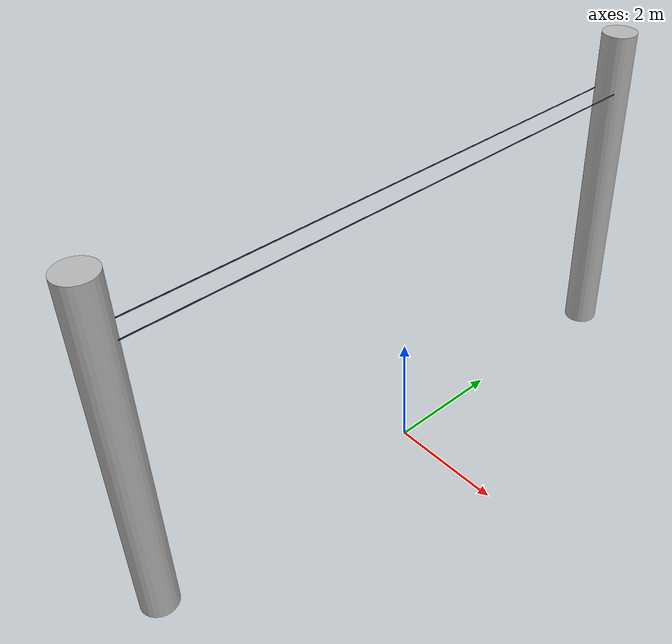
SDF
<?xml version='1.0'?>
<sdf version='1.7'>
  <model name='telegraph_pole'>
    <link name='pole_00'>
      <pose>0 -5 3 0 -0 0</pose>
      <self_collide>0</self_collide>
      <inertial>
        <pose>0 0 0 0 -0 0</pose>
        <inertia>
          <ixx>1</ixx>
          <ixy>0</ixy>
          <ixz>0</ixz>
          <iyy>1</iyy>
          <iyz>0</iyz>
          <izz>1</izz>
        </inertia>
        <mass>1</mass>
      </inertial>
      <enable_wind>0</enable_wind>
      <kinematic>0</kinematic>
      <gravity>1</gravity>
      <visual name='visual'>
        <geometry>
          <cylinder>
            <radius>0.3</radius>
            <length>6</length>
          </cylinder>
        </geometry>
        <material>
          <script>Gazebo/Grey</script>
        </material>
        <pose>0 0 0 0 -0 0</pose>
        <transparency>0</transparency>
        <cast_shadows>1</cast_shadows>
      </visual>
      <collision name='collision'>
        <laser_retro>0</laser_retro>
        <max_contacts>10</max_contacts>
        <pose>0 0 0 0 -0 0</pose>
        <geometry>
          <cylinder>
            <radius>0.3</radius>
            <length>6</length>
          </cylinder>
        </geometry>
        <surface>
          <friction>
            <ode>
              <mu>1</mu>
              <mu2>1</mu2>
              <fdir1>0 0 0</fdir1>
              <slip1>0</slip1>
              <slip2>0</slip2>
            </ode>
            <torsional>
              <coefficient>1</coefficient>
              <patch_radius>0</patch_radius>
              <surface_radius>0</surface_radius>
              <use_patch_radius>1</use_patch_radius>
              <ode>
                <slip>0</slip>
              </ode>
            </torsional>
          </friction>
          <bounce>
            <restitution_coefficient>0</restitution_coefficient>
            <threshold>1e+06</threshold>
          </bounce>
          <contact>
            <collide_without_contact>0</collide_without_contact>
            <collide_without_contact_bitmask>1</collide_without_contact_bitmask>
            <collide_bitmask>1</collide_bitmask>
            <ode>
              <soft_cfm>0</soft_cfm>
              <soft_erp>0.2</soft_erp>
              <kp>1e+13</kp>
              <kd>1</kd>
              <max_vel>0.01</max_vel>
              <min_depth>0</min_depth>
            </ode>
            <bullet>
              <split_impulse>1</split_impulse>
              <split_impulse_penetration_threshold>-0.01</split_impulse_penetration_threshold>
              <soft_cfm>0</soft_cfm>
              <soft_erp>0.2</soft_erp>
              <kp>1e+13</kp>
              <kd>1</kd>
            </bullet>
          </contact>
        </surface>
      </collision>
    </link>
    <link name='line00_00_01'>
      <pose>-0.2 0 5 1.57 -0 0</pose>
      <self_collide>0</self_collide>
      <inertial>
        <pose>0 0 0 0 -0 0</pose>
        <inertia>
          <ixx>1</ixx>
          <ixy>0</ixy>
          <ixz>0</ixz>
          <iyy>1</iyy>
          <iyz>0</iyz>
          <izz>1</izz>
        </inertia>
        <mass>1</mass>
      </inertial>
      <enable_wind>0</enable_wind>
      <kinematic>0</kinematic>
      <visual name='visual'>
        <geometry>
          <cylinder>
            <radius>0.01</radius>
            <length>10</length>
          </cylinder>
        </geometry>
        <material>
          <ambient>0.1 0.1 0.1 1</ambient>
          <diffuse>0.1 0.1 0.2 1</diffuse>
          <specular>0 0 0 0</specular>
          <emissive>0 0 0 1</emissive>
          <shader type='pixel'/>
          <script>
            <name>ModelPreview_5::line00_00_01::visual_MATERIAL_</name>
            <uri>__default__</uri>
          </script>
        </material>
        <pose>0 0 0 0 -0 0</pose>
        <transparency>0</transparency>
        <cast_shadows>1</cast_shadows>
      </visual>
      <collision name='collision'>
        <laser_retro>0</laser_retro>
        <max_contacts>10</max_contacts>
        <pose>0 0 0 0 -0 0</pose>
        <geometry>
          <cylinder>
            <radius>0.01</radius>
            <length>10</length>
          </cylinder>
        </geometry>
        <surface>
          <friction>
            <ode>
              <mu>1</mu>
              <mu2>1</mu2>
              <fdir1>0 0 0</fdir1>
              <slip1>0</slip1>
              <slip2>0</slip2>
            </ode>
            <torsional>
              <coefficient>1</coefficient>
              <patch_radius>0</patch_radius>
              <surface_radius>0</surface_radius>
              <use_patch_radius>1</use_patch_radius>
              <ode>
                <slip>0</slip>
              </ode>
            </torsional>
          </friction>
          <bounce>
            <restitution_coefficient>0</restitution_coefficient>
            <threshold>1e+06</threshold>
          </bounce>
          <contact>
            <collide_without_contact>0</collide_without_contact>
            <collide_without_contact_bitmask>1</collide_without_contact_bitmask>
            <collide_bitmask>1</collide_bitmask>
            <ode>
              <soft_cfm>0</soft_cfm>
              <soft_erp>0.2</soft_erp>
              <kp>1e+13</kp>
              <kd>1</kd>
              <max_vel>0.01</max_vel>
              <min_depth>0</min_depth>
            </ode>
            <bullet>
              <split_impulse>1</split_impulse>
              <split_impulse_penetration_threshold>-0.01</split_impulse_penetration_threshold>
              <soft_cfm>0</soft_cfm>
              <soft_erp>0.2</soft_erp>
              <kp>1e+13</kp>
              <kd>1</kd>
            </bullet>
          </contact>
        </surface>
      </collision>
    </link>
    <link name='line01_00_01'>
      <pose>0.2 0 5 1.57 -0 0</pose>
      <self_collide>0</self_collide>
      <inertial>
        <pose>0 0 0 0 -0 0</pose>
        <inertia>
          <ixx>1</ixx>
          <ixy>0</ixy>
          <ixz>0</ixz>
          <iyy>1</iyy>
          <iyz>0</iyz>
          <izz>1</izz>
        </inertia>
        <mass>1</mass>
      </inertial>
      <enable_wind>0</enable_wind>
      <kinematic>0</kinematic>
      <visual name='visual'>
        <geometry>
          <cylinder>
            <radius>0.01</radius>
            <length>10</length>
          </cylinder>
        </geometry>
        <material>
          <ambient>0.1 0.1 0.1 1</ambient>
          <diffuse>0.1 0.1 0.2 1</diffuse>
          <specular>0 0 0 0</specular>
          <emissive>0 0 0 1</emissive>
          <shader type='pixel'/>
          <script>
            <name>ModelPreview_5::line01_00_01::visual_MATERIAL_</name>
            <uri>__default__</uri>
          </script>
        </material>
        <pose>0 0 0 0 -0 0</pose>
        <transparency>0</transparency>
        <cast_shadows>1</cast_shadows>
      </visual>
      <collision name='collision'>
        <laser_retro>0</laser_retro>
        <max_contacts>10</max_contacts>
        <pose>0 0 0 0 -0 0</pose>
        <geometry>
          <cylinder>
            <radius>0.01</radius>
            <length>10</length>
          </cylinder>
        </geometry>
        <surface>
          <friction>
            <ode>
              <mu>1</mu>
              <mu2>1</mu2>
              <fdir1>0 0 0</fdir1>
              <slip1>0</slip1>
              <slip2>0</slip2>
            </ode>
            <torsional>
              <coefficient>1</coefficient>
              <patch_radius>0</patch_radius>
              <surface_radius>0</surface_radius>
              <use_patch_radius>1</use_patch_radius>
              <ode>
                <slip>0</slip>
              </ode>
            </torsional>
          </friction>
          <bounce>
            <restitution_coefficient>0</restitution_coefficient>
            <threshold>1e+06</threshold>
          </bounce>
          <contact>
            <collide_without_contact>0</collide_without_contact>
            <collide_without_contact_bitmask>1</collide_without_contact_bitmask>
            <collide_bitmask>1</collide_bitmask>
            <ode>
              <soft_cfm>0</soft_cfm>
              <soft_erp>0.2</soft_erp>
              <kp>1e+13</kp>
              <kd>1</kd>
              <max_vel>0.01</max_vel>
              <min_depth>0</min_depth>
            </ode>
            <bullet>
              <split_impulse>1</split_impulse>
              <split_impulse_penetration_threshold>-0.01</split_impulse_penetration_threshold>
              <soft_cfm>0</soft_cfm>
              <soft_erp>0.2</soft_erp>
              <kp>1e+13</kp>
              <kd>1</kd>
            </bullet>
          </contact>
        </surface>
      </collision>
    </link>
    <link name='pole_01'>
      <pose>0 5 3 0 -0 0</pose>
      <self_collide>0</self_collide>
      <inertial>
        <pose>0 0 0 0 -0 0</pose>
        <inertia>
          <ixx>1</ixx>
          <ixy>0</ixy>
          <ixz>0</ixz>
          <iyy>1</iyy>
          <iyz>0</iyz>
          <izz>1</izz>
        </inertia>
        <mass>1</mass>
      </inertial>
      <enable_wind>0</enable_wind>
      <kinematic>0</kinematic>
      <gravity>1</gravity>
      <visual name='visual'>
        <geometry>
          <cylinder>
            <radius>0.3</radius>
            <length>6</length>
          </cylinder>
        </geometry>
        <material>
          <script>Gazebo/Grey</script>
        </material>
        <pose>0 0 0 0 -0 0</pose>
        <transparency>0</transparency>
        <cast_shadows>1</cast_shadows>
      </visual>
      <collision name='collision'>
        <laser_retro>0</laser_retro>
        <max_contacts>10</max_contacts>
        <pose>0 0 0 0 -0 0</pose>
        <geometry>
          <cylinder>
            <radius>0.3</radius>
            <length>6</length>
          </cylinder>
        </geometry>
        <surface>
          <friction>
            <ode>
              <mu>1</mu>
              <mu2>1</mu2>
              <fdir1>0 0 0</fdir1>
              <slip1>0</slip1>
              <slip2>0</slip2>
            </ode>
            <torsional>
              <coefficient>1</coefficient>
              <patch_radius>0</patch_radius>
              <surface_radius>0</surface_radius>
              <use_patch_radius>1</use_patch_radius>
              <ode>
                <slip>0</slip>
              </ode>
            </torsional>
          </friction>
          <bounce>
            <restitution_coefficient>0</restitution_coefficient>
            <threshold>1e+06</threshold>
          </bounce>
          <contact>
            <collide_without_contact>0</collide_without_contact>
            <collide_without_contact_bitmask>1</collide_without_contact_bitmask>
            <collide_bitmask>1</collide_bitmask>
            <ode>
              <soft_cfm>0</soft_cfm>
              <soft_erp>0.2</soft_erp>
              <kp>1e+13</kp>
              <kd>1</kd>
              <max_vel>0.01</max_vel>
              <min_depth>0</min_depth>
            </ode>
            <bullet>
              <split_impulse>1</split_impulse>
              <split_impulse_penetration_threshold>-0.01</split_impulse_penetration_threshold>
              <soft_cfm>0</soft_cfm>
              <soft_erp>0.2</soft_erp>
              <kp>1e+13</kp>
              <kd>1</kd>
            </bullet>
          </contact>
        </surface>
      </collision>
    </link>
    <joint name='line00_pole_00' type='fixed'>
      <parent>pole_00</parent>
      <child>line00_00_01</child>
      <pose>0 0 5 0 -0 0</pose>
      <physics>
        <ode>
          <limit>
            <cfm>0</cfm>
            <erp>0.2</erp>
          </limit>
          <suspension>
            <cfm>0</cfm>
            <erp>0.2</erp>
          </suspension>
        </ode>
      </physics>
    </joint>
    <joint name='line00_pole_01' type='fixed'>
      <parent>pole_01</parent>
      <child>line00_00_01</child>
      <pose>0 0 -5 0 -0 0</pose>
      <physics>
        <ode>
          <limit>
            <cfm>0</cfm>
            <erp>0.2</erp>
          </limit>
          <suspension>
            <cfm>0</cfm>
            <erp>0.2</erp>
          </suspension>
        </ode>
      </physics>
    </joint>
    <joint name='line01_pole_00' type='fixed'>
      <parent>pole_00</parent>
      <child>line01_00_01</child>
      <pose>0 0 5 0 -0 0</pose>
      <physics>
        <ode>
          <limit>
            <cfm>0</cfm>
            <erp>0.2</erp>
          </limit>
          <suspension>
            <cfm>0</cfm>
            <erp>0.2</erp>
          </suspension>
        </ode>
      </physics>
    </joint>
    <joint name='line01_pole_01' type='fixed'>
      <parent>pole_01</parent>
      <child>line01_00_01</child>
      <pose>0 0 -5 0 -0 0</pose>
      <physics>
        <ode>
          <limit>
            <cfm>0</cfm>
            <erp>0.2</erp>
          </limit>
          <suspension>
            <cfm>0</cfm>
            <erp>0.2</erp>
          </suspension>
        </ode>
      </physics>
    </joint>
    <static>1</static>
    <allow_auto_disable>1</allow_auto_disable>
  </model>
</sdf>
